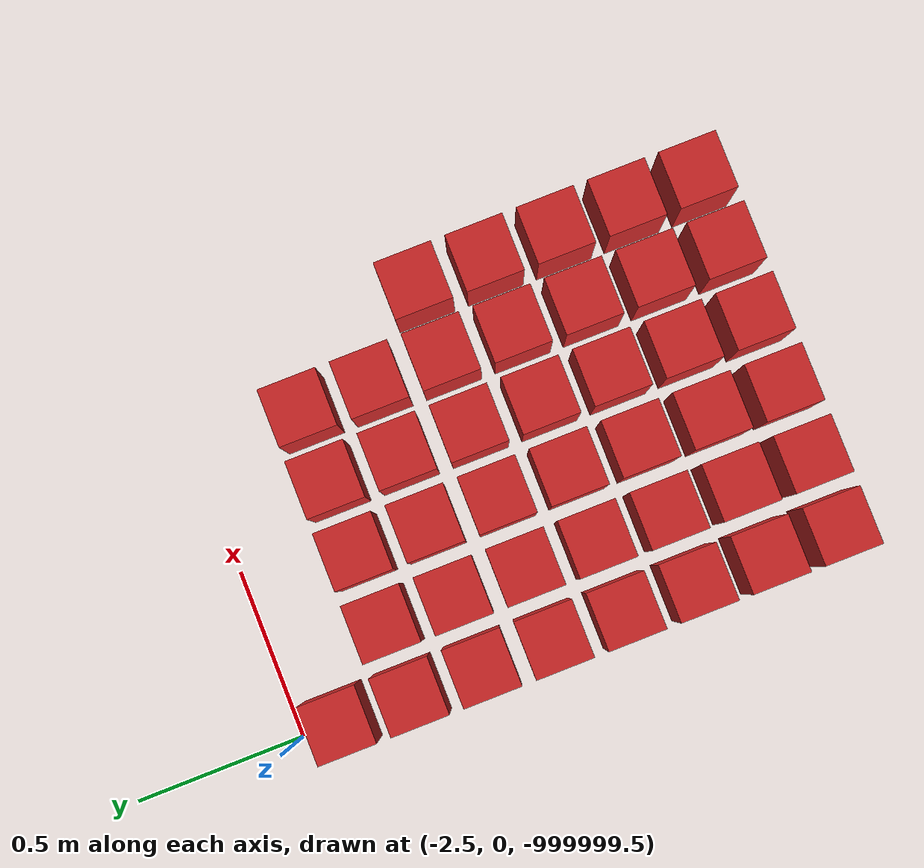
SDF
<sdf version="1.7">
 <world name="default">
  <model name="ground_plane">
   <static>1</static>
   <link name="link">
    <collision name="collision">
     <geometry><plane><normal>0 0 1</normal><size>100 100</size></plane></geometry>
     <surface>
      <contact><collide_bitmask>65535</collide_bitmask></contact>
      <friction><ode><mu>100</mu><mu2>50</mu2></ode></friction>
     </surface>
    </collision>
    <visual name="visual">
     <cast_shadows>0</cast_shadows>
     <geometry><plane><normal>0 0 1</normal><size>100 100</size></plane></geometry>
     <material>
      <script><uri>file://media/materials/scripts/gazebo.material</uri><name>Gazebo/Grey</name></script>
     </material>
    </visual>
   </link>
  </model>
  <model name="wall_92">
   <link name="link">
    <pose>0 0 0.5 0 -0 0</pose>
    <inertial>
     <mass>0.5167</mass>
     <inertia>
      <ixx>0.000861167</ixx>
      <ixy>0</ixy>
      <ixz>0</ixz>
      <iyy>0.000861167</iyy>
      <iyz>0</iyz>
      <izz>0.000861167</izz>
     </inertia>
    </inertial>
    <collision name="collision">
     <geometry><box><size>0.21 0.21 0.25</size></box></geometry>
     <surface>
      <contact>
       <poissons_ratio>0.347</poissons_ratio>
       <elastic_modulus>8.8e+09</elastic_modulus>
       <ode><kp>100000</kp><kd>100</kd><max_vel>100</max_vel><min_depth>0.001</min_depth></ode>
      </contact>
      <friction>
       <torsional>
        <coefficient>1</coefficient>
        <use_patch_radius>0</use_patch_radius>
        <surface_radius>0.01</surface_radius>
       </torsional>
      </friction>
     </surface>
    </collision>
    <visual name="visual">
     <geometry><box><size>0.175 0.175 0.25</size></box></geometry>
     <material>
      <script><uri>file://media/materials/scripts/gazebo.material</uri><name>Gazebo/Red</name></script>
     </material>
    </visual>
   </link>
   <pose>-2.5 -1.63043 -1e+06 0 -0 0</pose>
  </model>
  <model name="wall_93">
   <link name="link">
    <pose>0 0 0.5 0 -0 0</pose>
    <inertial>
     <mass>0.5167</mass>
     <inertia>
      <ixx>0.000861167</ixx>
      <ixy>0</ixy>
      <ixz>0</ixz>
      <iyy>0.000861167</iyy>
      <iyz>0</iyz>
      <izz>0.000861167</izz>
     </inertia>
    </inertial>
    <collision name="collision">
     <geometry><box><size>0.21 0.21 0.25</size></box></geometry>
     <surface>
      <contact>
       <poissons_ratio>0.347</poissons_ratio>
       <elastic_modulus>8.8e+09</elastic_modulus>
       <ode><kp>100000</kp><kd>100</kd><max_vel>100</max_vel><min_depth>0.001</min_depth></ode>
      </contact>
      <friction>
       <torsional>
        <coefficient>1</coefficient>
        <use_patch_radius>0</use_patch_radius>
        <surface_radius>0.01</surface_radius>
       </torsional>
      </friction>
     </surface>
    </collision>
    <visual name="visual">
     <geometry><box><size>0.175 0.175 0.25</size></box></geometry>
     <material>
      <script><uri>file://media/materials/scripts/gazebo.material</uri><name>Gazebo/Red</name></script>
     </material>
    </visual>
   </link>
   <pose>-2.28261 -1.63043 -1e+06 0 -0 0</pose>
  </model>
  <model name="wall_94">
   <link name="link">
    <pose>0 0 0.5 0 -0 0</pose>
    <inertial>
     <mass>0.5167</mass>
     <inertia>
      <ixx>0.000861167</ixx>
      <ixy>0</ixy>
      <ixz>0</ixz>
      <iyy>0.000861167</iyy>
      <iyz>0</iyz>
      <izz>0.000861167</izz>
     </inertia>
    </inertial>
    <collision name="collision">
     <geometry><box><size>0.21 0.21 0.25</size></box></geometry>
     <surface>
      <contact>
       <poissons_ratio>0.347</poissons_ratio>
       <elastic_modulus>8.8e+09</elastic_modulus>
       <ode><kp>100000</kp><kd>100</kd><max_vel>100</max_vel><min_depth>0.001</min_depth></ode>
      </contact>
      <friction>
       <torsional>
        <coefficient>1</coefficient>
        <use_patch_radius>0</use_patch_radius>
        <surface_radius>0.01</surface_radius>
       </torsional>
      </friction>
     </surface>
    </collision>
    <visual name="visual">
     <geometry><box><size>0.175 0.175 0.25</size></box></geometry>
     <material>
      <script><uri>file://media/materials/scripts/gazebo.material</uri><name>Gazebo/Red</name></script>
     </material>
    </visual>
   </link>
   <pose>-2.06522 -1.63043 -1e+06 0 -0 0</pose>
  </model>
  <model name="wall_95">
   <link name="link">
    <pose>0 0 0.5 0 -0 0</pose>
    <inertial>
     <mass>0.5167</mass>
     <inertia>
      <ixx>0.000861167</ixx>
      <ixy>0</ixy>
      <ixz>0</ixz>
      <iyy>0.000861167</iyy>
      <iyz>0</iyz>
      <izz>0.000861167</izz>
     </inertia>
    </inertial>
    <collision name="collision">
     <geometry><box><size>0.21 0.21 0.25</size></box></geometry>
     <surface>
      <contact>
       <poissons_ratio>0.347</poissons_ratio>
       <elastic_modulus>8.8e+09</elastic_modulus>
       <ode><kp>100000</kp><kd>100</kd><max_vel>100</max_vel><min_depth>0.001</min_depth></ode>
      </contact>
      <friction>
       <torsional>
        <coefficient>1</coefficient>
        <use_patch_radius>0</use_patch_radius>
        <surface_radius>0.01</surface_radius>
       </torsional>
      </friction>
     </surface>
    </collision>
    <visual name="visual">
     <geometry><box><size>0.175 0.175 0.25</size></box></geometry>
     <material>
      <script><uri>file://media/materials/scripts/gazebo.material</uri><name>Gazebo/Red</name></script>
     </material>
    </visual>
   </link>
   <pose>-1.84783 -1.63043 -1e+06 0 -0 0</pose>
  </model>
  <model name="wall_96">
   <link name="link">
    <pose>0 0 0.5 0 -0 0</pose>
    <inertial>
     <mass>0.5167</mass>
     <inertia>
      <ixx>0.000861167</ixx>
      <ixy>0</ixy>
      <ixz>0</ixz>
      <iyy>0.000861167</iyy>
      <iyz>0</iyz>
      <izz>0.000861167</izz>
     </inertia>
    </inertial>
    <collision name="collision">
     <geometry><box><size>0.21 0.21 0.25</size></box></geometry>
     <surface>
      <contact>
       <poissons_ratio>0.347</poissons_ratio>
       <elastic_modulus>8.8e+09</elastic_modulus>
       <ode><kp>100000</kp><kd>100</kd><max_vel>100</max_vel><min_depth>0.001</min_depth></ode>
      </contact>
      <friction>
       <torsional>
        <coefficient>1</coefficient>
        <use_patch_radius>0</use_patch_radius>
        <surface_radius>0.01</surface_radius>
       </torsional>
      </friction>
     </surface>
    </collision>
    <visual name="visual">
     <geometry><box><size>0.175 0.175 0.25</size></box></geometry>
     <material>
      <script><uri>file://media/materials/scripts/gazebo.material</uri><name>Gazebo/Red</name></script>
     </material>
    </visual>
   </link>
   <pose>-1.63043 -1.63043 -1e+06 0 -0 0</pose>
  </model>
  <model name="wall_97">
   <link name="link">
    <pose>0 0 0.5 0 -0 0</pose>
    <inertial>
     <mass>0.5167</mass>
     <inertia>
      <ixx>0.000861167</ixx>
      <ixy>0</ixy>
      <ixz>0</ixz>
      <iyy>0.000861167</iyy>
      <iyz>0</iyz>
      <izz>0.000861167</izz>
     </inertia>
    </inertial>
    <collision name="collision">
     <geometry><box><size>0.21 0.21 0.25</size></box></geometry>
     <surface>
      <contact>
       <poissons_ratio>0.347</poissons_ratio>
       <elastic_modulus>8.8e+09</elastic_modulus>
       <ode><kp>100000</kp><kd>100</kd><max_vel>100</max_vel><min_depth>0.001</min_depth></ode>
      </contact>
      <friction>
       <torsional>
        <coefficient>1</coefficient>
        <use_patch_radius>0</use_patch_radius>
        <surface_radius>0.01</surface_radius>
       </torsional>
      </friction>
     </surface>
    </collision>
    <visual name="visual">
     <geometry><box><size>0.175 0.175 0.25</size></box></geometry>
     <material>
      <script><uri>file://media/materials/scripts/gazebo.material</uri><name>Gazebo/Red</name></script>
     </material>
    </visual>
   </link>
   <pose>-1.41304 -1.63043 -1e+06 0 -0 0</pose>
  </model>
  <model name="wall_115">
   <link name="link">
    <pose>0 0 0.5 0 -0 0</pose>
    <inertial>
     <mass>0.5167</mass>
     <inertia>
      <ixx>0.000861167</ixx>
      <ixy>0</ixy>
      <ixz>0</ixz>
      <iyy>0.000861167</iyy>
      <iyz>0</iyz>
      <izz>0.000861167</izz>
     </inertia>
    </inertial>
    <collision name="collision">
     <geometry><box><size>0.21 0.21 0.25</size></box></geometry>
     <surface>
      <contact>
       <poissons_ratio>0.347</poissons_ratio>
       <elastic_modulus>8.8e+09</elastic_modulus>
       <ode><kp>100000</kp><kd>100</kd><max_vel>100</max_vel><min_depth>0.001</min_depth></ode>
      </contact>
      <friction>
       <torsional>
        <coefficient>1</coefficient>
        <use_patch_radius>0</use_patch_radius>
        <surface_radius>0.01</surface_radius>
       </torsional>
      </friction>
     </surface>
    </collision>
    <visual name="visual">
     <geometry><box><size>0.175 0.175 0.25</size></box></geometry>
     <material>
      <script><uri>file://media/materials/scripts/gazebo.material</uri><name>Gazebo/Red</name></script>
     </material>
    </visual>
   </link>
   <pose>-2.5 -1.41304 -1e+06 0 -0 0</pose>
  </model>
  <model name="wall_116">
   <link name="link">
    <pose>0 0 0.5 0 -0 0</pose>
    <inertial>
     <mass>0.5167</mass>
     <inertia>
      <ixx>0.000861167</ixx>
      <ixy>0</ixy>
      <ixz>0</ixz>
      <iyy>0.000861167</iyy>
      <iyz>0</iyz>
      <izz>0.000861167</izz>
     </inertia>
    </inertial>
    <collision name="collision">
     <geometry><box><size>0.21 0.21 0.25</size></box></geometry>
     <surface>
      <contact>
       <poissons_ratio>0.347</poissons_ratio>
       <elastic_modulus>8.8e+09</elastic_modulus>
       <ode><kp>100000</kp><kd>100</kd><max_vel>100</max_vel><min_depth>0.001</min_depth></ode>
      </contact>
      <friction>
       <torsional>
        <coefficient>1</coefficient>
        <use_patch_radius>0</use_patch_radius>
        <surface_radius>0.01</surface_radius>
       </torsional>
      </friction>
     </surface>
    </collision>
    <visual name="visual">
     <geometry><box><size>0.175 0.175 0.25</size></box></geometry>
     <material>
      <script><uri>file://media/materials/scripts/gazebo.material</uri><name>Gazebo/Red</name></script>
     </material>
    </visual>
   </link>
   <pose>-2.28261 -1.41304 -1e+06 0 -0 0</pose>
  </model>
  <model name="wall_117">
   <link name="link">
    <pose>0 0 0.5 0 -0 0</pose>
    <inertial>
     <mass>0.5167</mass>
     <inertia>
      <ixx>0.000861167</ixx>
      <ixy>0</ixy>
      <ixz>0</ixz>
      <iyy>0.000861167</iyy>
      <iyz>0</iyz>
      <izz>0.000861167</izz>
     </inertia>
    </inertial>
    <collision name="collision">
     <geometry><box><size>0.21 0.21 0.25</size></box></geometry>
     <surface>
      <contact>
       <poissons_ratio>0.347</poissons_ratio>
       <elastic_modulus>8.8e+09</elastic_modulus>
       <ode><kp>100000</kp><kd>100</kd><max_vel>100</max_vel><min_depth>0.001</min_depth></ode>
      </contact>
      <friction>
       <torsional>
        <coefficient>1</coefficient>
        <use_patch_radius>0</use_patch_radius>
        <surface_radius>0.01</surface_radius>
       </torsional>
      </friction>
     </surface>
    </collision>
    <visual name="visual">
     <geometry><box><size>0.175 0.175 0.25</size></box></geometry>
     <material>
      <script><uri>file://media/materials/scripts/gazebo.material</uri><name>Gazebo/Red</name></script>
     </material>
    </visual>
   </link>
   <pose>-2.06522 -1.41304 -1e+06 0 -0 0</pose>
  </model>
  <model name="wall_118">
   <link name="link">
    <pose>0 0 0.5 0 -0 0</pose>
    <inertial>
     <mass>0.5167</mass>
     <inertia>
      <ixx>0.000861167</ixx>
      <ixy>0</ixy>
      <ixz>0</ixz>
      <iyy>0.000861167</iyy>
      <iyz>0</iyz>
      <izz>0.000861167</izz>
     </inertia>
    </inertial>
    <collision name="collision">
     <geometry><box><size>0.21 0.21 0.25</size></box></geometry>
     <surface>
      <contact>
       <poissons_ratio>0.347</poissons_ratio>
       <elastic_modulus>8.8e+09</elastic_modulus>
       <ode><kp>100000</kp><kd>100</kd><max_vel>100</max_vel><min_depth>0.001</min_depth></ode>
      </contact>
      <friction>
       <torsional>
        <coefficient>1</coefficient>
        <use_patch_radius>0</use_patch_radius>
        <surface_radius>0.01</surface_radius>
       </torsional>
      </friction>
     </surface>
    </collision>
    <visual name="visual">
     <geometry><box><size>0.175 0.175 0.25</size></box></geometry>
     <material>
      <script><uri>file://media/materials/scripts/gazebo.material</uri><name>Gazebo/Red</name></script>
     </material>
    </visual>
   </link>
   <pose>-1.84783 -1.41304 -1e+06 0 -0 0</pose>
  </model>
  <model name="wall_119">
   <link name="link">
    <pose>0 0 0.5 0 -0 0</pose>
    <inertial>
     <mass>0.5167</mass>
     <inertia>
      <ixx>0.000861167</ixx>
      <ixy>0</ixy>
      <ixz>0</ixz>
      <iyy>0.000861167</iyy>
      <iyz>0</iyz>
      <izz>0.000861167</izz>
     </inertia>
    </inertial>
    <collision name="collision">
     <geometry><box><size>0.21 0.21 0.25</size></box></geometry>
     <surface>
      <contact>
       <poissons_ratio>0.347</poissons_ratio>
       <elastic_modulus>8.8e+09</elastic_modulus>
       <ode><kp>100000</kp><kd>100</kd><max_vel>100</max_vel><min_depth>0.001</min_depth></ode>
      </contact>
      <friction>
       <torsional>
        <coefficient>1</coefficient>
        <use_patch_radius>0</use_patch_radius>
        <surface_radius>0.01</surface_radius>
       </torsional>
      </friction>
     </surface>
    </collision>
    <visual name="visual">
     <geometry><box><size>0.175 0.175 0.25</size></box></geometry>
     <material>
      <script><uri>file://media/materials/scripts/gazebo.material</uri><name>Gazebo/Red</name></script>
     </material>
    </visual>
   </link>
   <pose>-1.63043 -1.41304 -1e+06 0 -0 0</pose>
  </model>
  <model name="wall_120">
   <link name="link">
    <pose>0 0 0.5 0 -0 0</pose>
    <inertial>
     <mass>0.5167</mass>
     <inertia>
      <ixx>0.000861167</ixx>
      <ixy>0</ixy>
      <ixz>0</ixz>
      <iyy>0.000861167</iyy>
      <iyz>0</iyz>
      <izz>0.000861167</izz>
     </inertia>
    </inertial>
    <collision name="collision">
     <geometry><box><size>0.21 0.21 0.25</size></box></geometry>
     <surface>
      <contact>
       <poissons_ratio>0.347</poissons_ratio>
       <elastic_modulus>8.8e+09</elastic_modulus>
       <ode><kp>100000</kp><kd>100</kd><max_vel>100</max_vel><min_depth>0.001</min_depth></ode>
      </contact>
      <friction>
       <torsional>
        <coefficient>1</coefficient>
        <use_patch_radius>0</use_patch_radius>
        <surface_radius>0.01</surface_radius>
       </torsional>
      </friction>
     </surface>
    </collision>
    <visual name="visual">
     <geometry><box><size>0.175 0.175 0.25</size></box></geometry>
     <material>
      <script><uri>file://media/materials/scripts/gazebo.material</uri><name>Gazebo/Red</name></script>
     </material>
    </visual>
   </link>
   <pose>-1.41304 -1.41304 -1e+06 0 -0 0</pose>
  </model>
  <model name="wall_138">
   <link name="link">
    <pose>0 0 0.5 0 -0 0</pose>
    <inertial>
     <mass>0.5167</mass>
     <inertia>
      <ixx>0.000861167</ixx>
      <ixy>0</ixy>
      <ixz>0</ixz>
      <iyy>0.000861167</iyy>
      <iyz>0</iyz>
      <izz>0.000861167</izz>
     </inertia>
    </inertial>
    <collision name="collision">
     <geometry><box><size>0.21 0.21 0.25</size></box></geometry>
     <surface>
      <contact>
       <poissons_ratio>0.347</poissons_ratio>
       <elastic_modulus>8.8e+09</elastic_modulus>
       <ode><kp>100000</kp><kd>100</kd><max_vel>100</max_vel><min_depth>0.001</min_depth></ode>
      </contact>
      <friction>
       <torsional>
        <coefficient>1</coefficient>
        <use_patch_radius>0</use_patch_radius>
        <surface_radius>0.01</surface_radius>
       </torsional>
      </friction>
     </surface>
    </collision>
    <visual name="visual">
     <geometry><box><size>0.175 0.175 0.25</size></box></geometry>
     <material>
      <script><uri>file://media/materials/scripts/gazebo.material</uri><name>Gazebo/Red</name></script>
     </material>
    </visual>
   </link>
   <pose>-2.5 -1.19565 -1e+06 0 -0 0</pose>
  </model>
  <model name="wall_139">
   <link name="link">
    <pose>0 0 0.5 0 -0 0</pose>
    <inertial>
     <mass>0.5167</mass>
     <inertia>
      <ixx>0.000861167</ixx>
      <ixy>0</ixy>
      <ixz>0</ixz>
      <iyy>0.000861167</iyy>
      <iyz>0</iyz>
      <izz>0.000861167</izz>
     </inertia>
    </inertial>
    <collision name="collision">
     <geometry><box><size>0.21 0.21 0.25</size></box></geometry>
     <surface>
      <contact>
       <poissons_ratio>0.347</poissons_ratio>
       <elastic_modulus>8.8e+09</elastic_modulus>
       <ode><kp>100000</kp><kd>100</kd><max_vel>100</max_vel><min_depth>0.001</min_depth></ode>
      </contact>
      <friction>
       <torsional>
        <coefficient>1</coefficient>
        <use_patch_radius>0</use_patch_radius>
        <surface_radius>0.01</surface_radius>
       </torsional>
      </friction>
     </surface>
    </collision>
    <visual name="visual">
     <geometry><box><size>0.175 0.175 0.25</size></box></geometry>
     <material>
      <script><uri>file://media/materials/scripts/gazebo.material</uri><name>Gazebo/Red</name></script>
     </material>
    </visual>
   </link>
   <pose>-2.28261 -1.19565 -1e+06 0 -0 0</pose>
  </model>
  <model name="wall_140">
   <link name="link">
    <pose>0 0 0.5 0 -0 0</pose>
    <inertial>
     <mass>0.5167</mass>
     <inertia>
      <ixx>0.000861167</ixx>
      <ixy>0</ixy>
      <ixz>0</ixz>
      <iyy>0.000861167</iyy>
      <iyz>0</iyz>
      <izz>0.000861167</izz>
     </inertia>
    </inertial>
    <collision name="collision">
     <geometry><box><size>0.21 0.21 0.25</size></box></geometry>
     <surface>
      <contact>
       <poissons_ratio>0.347</poissons_ratio>
       <elastic_modulus>8.8e+09</elastic_modulus>
       <ode><kp>100000</kp><kd>100</kd><max_vel>100</max_vel><min_depth>0.001</min_depth></ode>
      </contact>
      <friction>
       <torsional>
        <coefficient>1</coefficient>
        <use_patch_radius>0</use_patch_radius>
        <surface_radius>0.01</surface_radius>
       </torsional>
      </friction>
     </surface>
    </collision>
    <visual name="visual">
     <geometry><box><size>0.175 0.175 0.25</size></box></geometry>
     <material>
      <script><uri>file://media/materials/scripts/gazebo.material</uri><name>Gazebo/Red</name></script>
     </material>
    </visual>
   </link>
   <pose>-2.06522 -1.19565 -1e+06 0 -0 0</pose>
  </model>
  <model name="wall_141">
   <link name="link">
    <pose>0 0 0.5 0 -0 0</pose>
    <inertial>
     <mass>0.5167</mass>
     <inertia>
      <ixx>0.000861167</ixx>
      <ixy>0</ixy>
      <ixz>0</ixz>
      <iyy>0.000861167</iyy>
      <iyz>0</iyz>
      <izz>0.000861167</izz>
     </inertia>
    </inertial>
    <collision name="collision">
     <geometry><box><size>0.21 0.21 0.25</size></box></geometry>
     <surface>
      <contact>
       <poissons_ratio>0.347</poissons_ratio>
       <elastic_modulus>8.8e+09</elastic_modulus>
       <ode><kp>100000</kp><kd>100</kd><max_vel>100</max_vel><min_depth>0.001</min_depth></ode>
      </contact>
      <friction>
       <torsional>
        <coefficient>1</coefficient>
        <use_patch_radius>0</use_patch_radius>
        <surface_radius>0.01</surface_radius>
       </torsional>
      </friction>
     </surface>
    </collision>
    <visual name="visual">
     <geometry><box><size>0.175 0.175 0.25</size></box></geometry>
     <material>
      <script><uri>file://media/materials/scripts/gazebo.material</uri><name>Gazebo/Red</name></script>
     </material>
    </visual>
   </link>
   <pose>-1.84783 -1.19565 -1e+06 0 -0 0</pose>
  </model>
  <model name="wall_142">
   <link name="link">
    <pose>0 0 0.5 0 -0 0</pose>
    <inertial>
     <mass>0.5167</mass>
     <inertia>
      <ixx>0.000861167</ixx>
      <ixy>0</ixy>
      <ixz>0</ixz>
      <iyy>0.000861167</iyy>
      <iyz>0</iyz>
      <izz>0.000861167</izz>
     </inertia>
    </inertial>
    <collision name="collision">
     <geometry><box><size>0.21 0.21 0.25</size></box></geometry>
     <surface>
      <contact>
       <poissons_ratio>0.347</poissons_ratio>
       <elastic_modulus>8.8e+09</elastic_modulus>
       <ode><kp>100000</kp><kd>100</kd><max_vel>100</max_vel><min_depth>0.001</min_depth></ode>
      </contact>
      <friction>
       <torsional>
        <coefficient>1</coefficient>
        <use_patch_radius>0</use_patch_radius>
        <surface_radius>0.01</surface_radius>
       </torsional>
      </friction>
     </surface>
    </collision>
    <visual name="visual">
     <geometry><box><size>0.175 0.175 0.25</size></box></geometry>
     <material>
      <script><uri>file://media/materials/scripts/gazebo.material</uri><name>Gazebo/Red</name></script>
     </material>
    </visual>
   </link>
   <pose>-1.63043 -1.19565 -1e+06 0 -0 0</pose>
  </model>
  <model name="wall_143">
   <link name="link">
    <pose>0 0 0.5 0 -0 0</pose>
    <inertial>
     <mass>0.5167</mass>
     <inertia>
      <ixx>0.000861167</ixx>
      <ixy>0</ixy>
      <ixz>0</ixz>
      <iyy>0.000861167</iyy>
      <iyz>0</iyz>
      <izz>0.000861167</izz>
     </inertia>
    </inertial>
    <collision name="collision">
     <geometry><box><size>0.21 0.21 0.25</size></box></geometry>
     <surface>
      <contact>
       <poissons_ratio>0.347</poissons_ratio>
       <elastic_modulus>8.8e+09</elastic_modulus>
       <ode><kp>100000</kp><kd>100</kd><max_vel>100</max_vel><min_depth>0.001</min_depth></ode>
      </contact>
      <friction>
       <torsional>
        <coefficient>1</coefficient>
        <use_patch_radius>0</use_patch_radius>
        <surface_radius>0.01</surface_radius>
       </torsional>
      </friction>
     </surface>
    </collision>
    <visual name="visual">
     <geometry><box><size>0.175 0.175 0.25</size></box></geometry>
     <material>
      <script><uri>file://media/materials/scripts/gazebo.material</uri><name>Gazebo/Red</name></script>
     </material>
    </visual>
   </link>
   <pose>-1.41304 -1.19565 -1e+06 0 -0 0</pose>
  </model>
  <model name="wall_161">
   <link name="link">
    <pose>0 0 0.5 0 -0 0</pose>
    <inertial>
     <mass>0.5167</mass>
     <inertia>
      <ixx>0.000861167</ixx>
      <ixy>0</ixy>
      <ixz>0</ixz>
      <iyy>0.000861167</iyy>
      <iyz>0</iyz>
      <izz>0.000861167</izz>
     </inertia>
    </inertial>
    <collision name="collision">
     <geometry><box><size>0.21 0.21 0.25</size></box></geometry>
     <surface>
      <contact>
       <poissons_ratio>0.347</poissons_ratio>
       <elastic_modulus>8.8e+09</elastic_modulus>
       <ode><kp>100000</kp><kd>100</kd><max_vel>100</max_vel><min_depth>0.001</min_depth></ode>
      </contact>
      <friction>
       <torsional>
        <coefficient>1</coefficient>
        <use_patch_radius>0</use_patch_radius>
        <surface_radius>0.01</surface_radius>
       </torsional>
      </friction>
     </surface>
    </collision>
    <visual name="visual">
     <geometry><box><size>0.175 0.175 0.25</size></box></geometry>
     <material>
      <script><uri>file://media/materials/scripts/gazebo.material</uri><name>Gazebo/Red</name></script>
     </material>
    </visual>
   </link>
   <pose>-2.5 -0.978261 -1e+06 0 -0 0</pose>
  </model>
  <model name="wall_162">
   <link name="link">
    <pose>0 0 0.5 0 -0 0</pose>
    <inertial>
     <mass>0.5167</mass>
     <inertia>
      <ixx>0.000861167</ixx>
      <ixy>0</ixy>
      <ixz>0</ixz>
      <iyy>0.000861167</iyy>
      <iyz>0</iyz>
      <izz>0.000861167</izz>
     </inertia>
    </inertial>
    <collision name="collision">
     <geometry><box><size>0.21 0.21 0.25</size></box></geometry>
     <surface>
      <contact>
       <poissons_ratio>0.347</poissons_ratio>
       <elastic_modulus>8.8e+09</elastic_modulus>
       <ode><kp>100000</kp><kd>100</kd><max_vel>100</max_vel><min_depth>0.001</min_depth></ode>
      </contact>
      <friction>
       <torsional>
        <coefficient>1</coefficient>
        <use_patch_radius>0</use_patch_radius>
        <surface_radius>0.01</surface_radius>
       </torsional>
      </friction>
     </surface>
    </collision>
    <visual name="visual">
     <geometry><box><size>0.175 0.175 0.25</size></box></geometry>
     <material>
      <script><uri>file://media/materials/scripts/gazebo.material</uri><name>Gazebo/Red</name></script>
     </material>
    </visual>
   </link>
   <pose>-2.28261 -0.978261 -1e+06 0 -0 0</pose>
  </model>
  <model name="wall_163">
   <link name="link">
    <pose>0 0 0.5 0 -0 0</pose>
    <inertial>
     <mass>0.5167</mass>
     <inertia>
      <ixx>0.000861167</ixx>
      <ixy>0</ixy>
      <ixz>0</ixz>
      <iyy>0.000861167</iyy>
      <iyz>0</iyz>
      <izz>0.000861167</izz>
     </inertia>
    </inertial>
    <collision name="collision">
     <geometry><box><size>0.21 0.21 0.25</size></box></geometry>
     <surface>
      <contact>
       <poissons_ratio>0.347</poissons_ratio>
       <elastic_modulus>8.8e+09</elastic_modulus>
       <ode><kp>100000</kp><kd>100</kd><max_vel>100</max_vel><min_depth>0.001</min_depth></ode>
      </contact>
      <friction>
       <torsional>
        <coefficient>1</coefficient>
        <use_patch_radius>0</use_patch_radius>
        <surface_radius>0.01</surface_radius>
       </torsional>
      </friction>
     </surface>
    </collision>
    <visual name="visual">
     <geometry><box><size>0.175 0.175 0.25</size></box></geometry>
     <material>
      <script><uri>file://media/materials/scripts/gazebo.material</uri><name>Gazebo/Red</name></script>
     </material>
    </visual>
   </link>
   <pose>-2.06522 -0.978261 -1e+06 0 -0 0</pose>
  </model>
  <model name="wall_164">
   <link name="link">
    <pose>0 0 0.5 0 -0 0</pose>
    <inertial>
     <mass>0.5167</mass>
     <inertia>
      <ixx>0.000861167</ixx>
      <ixy>0</ixy>
      <ixz>0</ixz>
      <iyy>0.000861167</iyy>
      <iyz>0</iyz>
      <izz>0.000861167</izz>
     </inertia>
    </inertial>
    <collision name="collision">
     <geometry><box><size>0.21 0.21 0.25</size></box></geometry>
     <surface>
      <contact>
       <poissons_ratio>0.347</poissons_ratio>
       <elastic_modulus>8.8e+09</elastic_modulus>
       <ode><kp>100000</kp><kd>100</kd><max_vel>100</max_vel><min_depth>0.001</min_depth></ode>
      </contact>
      <friction>
       <torsional>
        <coefficient>1</coefficient>
        <use_patch_radius>0</use_patch_radius>
        <surface_radius>0.01</surface_radius>
       </torsional>
      </friction>
     </surface>
    </collision>
    <visual name="visual">
     <geometry><box><size>0.175 0.175 0.25</size></box></geometry>
     <material>
      <script><uri>file://media/materials/scripts/gazebo.material</uri><name>Gazebo/Red</name></script>
     </material>
    </visual>
   </link>
   <pose>-1.84783 -0.978261 -1e+06 0 -0 0</pose>
  </model>
  <model name="wall_165">
   <link name="link">
    <pose>0 0 0.5 0 -0 0</pose>
    <inertial>
     <mass>0.5167</mass>
     <inertia>
      <ixx>0.000861167</ixx>
      <ixy>0</ixy>
      <ixz>0</ixz>
      <iyy>0.000861167</iyy>
      <iyz>0</iyz>
      <izz>0.000861167</izz>
     </inertia>
    </inertial>
    <collision name="collision">
     <geometry><box><size>0.21 0.21 0.25</size></box></geometry>
     <surface>
      <contact>
       <poissons_ratio>0.347</poissons_ratio>
       <elastic_modulus>8.8e+09</elastic_modulus>
       <ode><kp>100000</kp><kd>100</kd><max_vel>100</max_vel><min_depth>0.001</min_depth></ode>
      </contact>
      <friction>
       <torsional>
        <coefficient>1</coefficient>
        <use_patch_radius>0</use_patch_radius>
        <surface_radius>0.01</surface_radius>
       </torsional>
      </friction>
     </surface>
    </collision>
    <visual name="visual">
     <geometry><box><size>0.175 0.175 0.25</size></box></geometry>
     <material>
      <script><uri>file://media/materials/scripts/gazebo.material</uri><name>Gazebo/Red</name></script>
     </material>
    </visual>
   </link>
   <pose>-1.63043 -0.978261 -1e+06 0 -0 0</pose>
  </model>
  <model name="wall_166">
   <link name="link">
    <pose>0 0 0.5 0 -0 0</pose>
    <inertial>
     <mass>0.5167</mass>
     <inertia>
      <ixx>0.000861167</ixx>
      <ixy>0</ixy>
      <ixz>0</ixz>
      <iyy>0.000861167</iyy>
      <iyz>0</iyz>
      <izz>0.000861167</izz>
     </inertia>
    </inertial>
    <collision name="collision">
     <geometry><box><size>0.21 0.21 0.25</size></box></geometry>
     <surface>
      <contact>
       <poissons_ratio>0.347</poissons_ratio>
       <elastic_modulus>8.8e+09</elastic_modulus>
       <ode><kp>100000</kp><kd>100</kd><max_vel>100</max_vel><min_depth>0.001</min_depth></ode>
      </contact>
      <friction>
       <torsional>
        <coefficient>1</coefficient>
        <use_patch_radius>0</use_patch_radius>
        <surface_radius>0.01</surface_radius>
       </torsional>
      </friction>
     </surface>
    </collision>
    <visual name="visual">
     <geometry><box><size>0.175 0.175 0.25</size></box></geometry>
     <material>
      <script><uri>file://media/materials/scripts/gazebo.material</uri><name>Gazebo/Red</name></script>
     </material>
    </visual>
   </link>
   <pose>-1.41304 -0.978261 -1e+06 0 -0 0</pose>
  </model>
  <model name="wall_184">
   <link name="link">
    <pose>0 0 0.5 0 -0 0</pose>
    <inertial>
     <mass>0.5167</mass>
     <inertia>
      <ixx>0.000861167</ixx>
      <ixy>0</ixy>
      <ixz>0</ixz>
      <iyy>0.000861167</iyy>
      <iyz>0</iyz>
      <izz>0.000861167</izz>
     </inertia>
    </inertial>
    <collision name="collision">
     <geometry><box><size>0.21 0.21 0.25</size></box></geometry>
     <surface>
      <contact>
       <poissons_ratio>0.347</poissons_ratio>
       <elastic_modulus>8.8e+09</elastic_modulus>
       <ode><kp>100000</kp><kd>100</kd><max_vel>100</max_vel><min_depth>0.001</min_depth></ode>
      </contact>
      <friction>
       <torsional>
        <coefficient>1</coefficient>
        <use_patch_radius>0</use_patch_radius>
        <surface_radius>0.01</surface_radius>
       </torsional>
      </friction>
     </surface>
    </collision>
    <visual name="visual">
     <geometry><box><size>0.175 0.175 0.25</size></box></geometry>
     <material>
      <script><uri>file://media/materials/scripts/gazebo.material</uri><name>Gazebo/Red</name></script>
     </material>
    </visual>
   </link>
   <pose>-2.5 -0.76087 -1e+06 0 -0 0</pose>
  </model>
  <model name="wall_185">
   <link name="link">
    <pose>0 0 0.5 0 -0 0</pose>
    <inertial>
     <mass>0.5167</mass>
     <inertia>
      <ixx>0.000861167</ixx>
      <ixy>0</ixy>
      <ixz>0</ixz>
      <iyy>0.000861167</iyy>
      <iyz>0</iyz>
      <izz>0.000861167</izz>
     </inertia>
    </inertial>
    <collision name="collision">
     <geometry><box><size>0.21 0.21 0.25</size></box></geometry>
     <surface>
      <contact>
       <poissons_ratio>0.347</poissons_ratio>
       <elastic_modulus>8.8e+09</elastic_modulus>
       <ode><kp>100000</kp><kd>100</kd><max_vel>100</max_vel><min_depth>0.001</min_depth></ode>
      </contact>
      <friction>
       <torsional>
        <coefficient>1</coefficient>
        <use_patch_radius>0</use_patch_radius>
        <surface_radius>0.01</surface_radius>
       </torsional>
      </friction>
     </surface>
    </collision>
    <visual name="visual">
     <geometry><box><size>0.175 0.175 0.25</size></box></geometry>
     <material>
      <script><uri>file://media/materials/scripts/gazebo.material</uri><name>Gazebo/Red</name></script>
     </material>
    </visual>
   </link>
   <pose>-2.28261 -0.76087 -1e+06 0 -0 0</pose>
  </model>
  <model name="wall_186">
   <link name="link">
    <pose>0 0 0.5 0 -0 0</pose>
    <inertial>
     <mass>0.5167</mass>
     <inertia>
      <ixx>0.000861167</ixx>
      <ixy>0</ixy>
      <ixz>0</ixz>
      <iyy>0.000861167</iyy>
      <iyz>0</iyz>
      <izz>0.000861167</izz>
     </inertia>
    </inertial>
    <collision name="collision">
     <geometry><box><size>0.21 0.21 0.25</size></box></geometry>
     <surface>
      <contact>
       <poissons_ratio>0.347</poissons_ratio>
       <elastic_modulus>8.8e+09</elastic_modulus>
       <ode><kp>100000</kp><kd>100</kd><max_vel>100</max_vel><min_depth>0.001</min_depth></ode>
      </contact>
      <friction>
       <torsional>
        <coefficient>1</coefficient>
        <use_patch_radius>0</use_patch_radius>
        <surface_radius>0.01</surface_radius>
       </torsional>
      </friction>
     </surface>
    </collision>
    <visual name="visual">
     <geometry><box><size>0.175 0.175 0.25</size></box></geometry>
     <material>
      <script><uri>file://media/materials/scripts/gazebo.material</uri><name>Gazebo/Red</name></script>
     </material>
    </visual>
   </link>
   <pose>-2.06522 -0.76087 -1e+06 0 -0 0</pose>
  </model>
  <model name="wall_187">
   <link name="link">
    <pose>0 0 0.5 0 -0 0</pose>
    <inertial>
     <mass>0.5167</mass>
     <inertia>
      <ixx>0.000861167</ixx>
      <ixy>0</ixy>
      <ixz>0</ixz>
      <iyy>0.000861167</iyy>
      <iyz>0</iyz>
      <izz>0.000861167</izz>
     </inertia>
    </inertial>
    <collision name="collision">
     <geometry><box><size>0.21 0.21 0.25</size></box></geometry>
     <surface>
      <contact>
       <poissons_ratio>0.347</poissons_ratio>
       <elastic_modulus>8.8e+09</elastic_modulus>
       <ode><kp>100000</kp><kd>100</kd><max_vel>100</max_vel><min_depth>0.001</min_depth></ode>
      </contact>
      <friction>
       <torsional>
        <coefficient>1</coefficient>
        <use_patch_radius>0</use_patch_radius>
        <surface_radius>0.01</surface_radius>
       </torsional>
      </friction>
     </surface>
    </collision>
    <visual name="visual">
     <geometry><box><size>0.175 0.175 0.25</size></box></geometry>
     <material>
      <script><uri>file://media/materials/scripts/gazebo.material</uri><name>Gazebo/Red</name></script>
     </material>
    </visual>
   </link>
   <pose>-1.84783 -0.76087 -1e+06 0 -0 0</pose>
  </model>
  <model name="wall_188">
   <link name="link">
    <pose>0 0 0.5 0 -0 0</pose>
    <inertial>
     <mass>0.5167</mass>
     <inertia>
      <ixx>0.000861167</ixx>
      <ixy>0</ixy>
      <ixz>0</ixz>
      <iyy>0.000861167</iyy>
      <iyz>0</iyz>
      <izz>0.000861167</izz>
     </inertia>
    </inertial>
    <collision name="collision">
     <geometry><box><size>0.21 0.21 0.25</size></box></geometry>
     <surface>
      <contact>
       <poissons_ratio>0.347</poissons_ratio>
       <elastic_modulus>8.8e+09</elastic_modulus>
       <ode><kp>100000</kp><kd>100</kd><max_vel>100</max_vel><min_depth>0.001</min_depth></ode>
      </contact>
      <friction>
       <torsional>
        <coefficient>1</coefficient>
        <use_patch_radius>0</use_patch_radius>
        <surface_radius>0.01</surface_radius>
       </torsional>
      </friction>
     </surface>
    </collision>
    <visual name="visual">
     <geometry><box><size>0.175 0.175 0.25</size></box></geometry>
     <material>
      <script><uri>file://media/materials/scripts/gazebo.material</uri><name>Gazebo/Red</name></script>
     </material>
    </visual>
   </link>
   <pose>-1.63043 -0.76087 -1e+06 0 -0 0</pose>
  </model>
  <model name="wall_189">
   <link name="link">
    <pose>0 0 0.5 0 -0 0</pose>
    <inertial>
     <mass>0.5167</mass>
     <inertia>
      <ixx>0.000861167</ixx>
      <ixy>0</ixy>
      <ixz>0</ixz>
      <iyy>0.000861167</iyy>
      <iyz>0</iyz>
      <izz>0.000861167</izz>
     </inertia>
    </inertial>
    <collision name="collision">
     <geometry><box><size>0.21 0.21 0.25</size></box></geometry>
     <surface>
      <contact>
       <poissons_ratio>0.347</poissons_ratio>
       <elastic_modulus>8.8e+09</elastic_modulus>
       <ode><kp>100000</kp><kd>100</kd><max_vel>100</max_vel><min_depth>0.001</min_depth></ode>
      </contact>
      <friction>
       <torsional>
        <coefficient>1</coefficient>
        <use_patch_radius>0</use_patch_radius>
        <surface_radius>0.01</surface_radius>
       </torsional>
      </friction>
     </surface>
    </collision>
    <visual name="visual">
     <geometry><box><size>0.175 0.175 0.25</size></box></geometry>
     <material>
      <script><uri>file://media/materials/scripts/gazebo.material</uri><name>Gazebo/Red</name></script>
     </material>
    </visual>
   </link>
   <pose>-1.41304 -0.76087 -1e+06 0 -0 0</pose>
  </model>
  <model name="wall_207">
   <link name="link">
    <pose>0 0 0.5 0 -0 0</pose>
    <inertial>
     <mass>0.5167</mass>
     <inertia>
      <ixx>0.000861167</ixx>
      <ixy>0</ixy>
      <ixz>0</ixz>
      <iyy>0.000861167</iyy>
      <iyz>0</iyz>
      <izz>0.000861167</izz>
     </inertia>
    </inertial>
    <collision name="collision">
     <geometry><box><size>0.21 0.21 0.25</size></box></geometry>
     <surface>
      <contact>
       <poissons_ratio>0.347</poissons_ratio>
       <elastic_modulus>8.8e+09</elastic_modulus>
       <ode><kp>100000</kp><kd>100</kd><max_vel>100</max_vel><min_depth>0.001</min_depth></ode>
      </contact>
      <friction>
       <torsional>
        <coefficient>1</coefficient>
        <use_patch_radius>0</use_patch_radius>
        <surface_radius>0.01</surface_radius>
       </torsional>
      </friction>
     </surface>
    </collision>
    <visual name="visual">
     <geometry><box><size>0.175 0.175 0.25</size></box></geometry>
     <material>
      <script><uri>file://media/materials/scripts/gazebo.material</uri><name>Gazebo/Red</name></script>
     </material>
    </visual>
   </link>
   <pose>-2.5 -0.543478 -1e+06 0 -0 0</pose>
  </model>
  <model name="wall_208">
   <link name="link">
    <pose>0 0 0.5 0 -0 0</pose>
    <inertial>
     <mass>0.5167</mass>
     <inertia>
      <ixx>0.000861167</ixx>
      <ixy>0</ixy>
      <ixz>0</ixz>
      <iyy>0.000861167</iyy>
      <iyz>0</iyz>
      <izz>0.000861167</izz>
     </inertia>
    </inertial>
    <collision name="collision">
     <geometry><box><size>0.21 0.21 0.25</size></box></geometry>
     <surface>
      <contact>
       <poissons_ratio>0.347</poissons_ratio>
       <elastic_modulus>8.8e+09</elastic_modulus>
       <ode><kp>100000</kp><kd>100</kd><max_vel>100</max_vel><min_depth>0.001</min_depth></ode>
      </contact>
      <friction>
       <torsional>
        <coefficient>1</coefficient>
        <use_patch_radius>0</use_patch_radius>
        <surface_radius>0.01</surface_radius>
       </torsional>
      </friction>
     </surface>
    </collision>
    <visual name="visual">
     <geometry><box><size>0.175 0.175 0.25</size></box></geometry>
     <material>
      <script><uri>file://media/materials/scripts/gazebo.material</uri><name>Gazebo/Red</name></script>
     </material>
    </visual>
   </link>
   <pose>-2.28261 -0.543478 -1e+06 0 -0 0</pose>
  </model>
  <model name="wall_209">
   <link name="link">
    <pose>0 0 0.5 0 -0 0</pose>
    <inertial>
     <mass>0.5167</mass>
     <inertia>
      <ixx>0.000861167</ixx>
      <ixy>0</ixy>
      <ixz>0</ixz>
      <iyy>0.000861167</iyy>
      <iyz>0</iyz>
      <izz>0.000861167</izz>
     </inertia>
    </inertial>
    <collision name="collision">
     <geometry><box><size>0.21 0.21 0.25</size></box></geometry>
     <surface>
      <contact>
       <poissons_ratio>0.347</poissons_ratio>
       <elastic_modulus>8.8e+09</elastic_modulus>
       <ode><kp>100000</kp><kd>100</kd><max_vel>100</max_vel><min_depth>0.001</min_depth></ode>
      </contact>
      <friction>
       <torsional>
        <coefficient>1</coefficient>
        <use_patch_radius>0</use_patch_radius>
        <surface_radius>0.01</surface_radius>
       </torsional>
      </friction>
     </surface>
    </collision>
    <visual name="visual">
     <geometry><box><size>0.175 0.175 0.25</size></box></geometry>
     <material>
      <script><uri>file://media/materials/scripts/gazebo.material</uri><name>Gazebo/Red</name></script>
     </material>
    </visual>
   </link>
   <pose>-2.06522 -0.543478 -1e+06 0 -0 0</pose>
  </model>
  <model name="wall_210">
   <link name="link">
    <pose>0 0 0.5 0 -0 0</pose>
    <inertial>
     <mass>0.5167</mass>
     <inertia>
      <ixx>0.000861167</ixx>
      <ixy>0</ixy>
      <ixz>0</ixz>
      <iyy>0.000861167</iyy>
      <iyz>0</iyz>
      <izz>0.000861167</izz>
     </inertia>
    </inertial>
    <collision name="collision">
     <geometry><box><size>0.21 0.21 0.25</size></box></geometry>
     <surface>
      <contact>
       <poissons_ratio>0.347</poissons_ratio>
       <elastic_modulus>8.8e+09</elastic_modulus>
       <ode><kp>100000</kp><kd>100</kd><max_vel>100</max_vel><min_depth>0.001</min_depth></ode>
      </contact>
      <friction>
       <torsional>
        <coefficient>1</coefficient>
        <use_patch_radius>0</use_patch_radius>
        <surface_radius>0.01</surface_radius>
       </torsional>
      </friction>
     </surface>
    </collision>
    <visual name="visual">
     <geometry><box><size>0.175 0.175 0.25</size></box></geometry>
     <material>
      <script><uri>file://media/materials/scripts/gazebo.material</uri><name>Gazebo/Red</name></script>
     </material>
    </visual>
   </link>
   <pose>-1.84783 -0.543478 -1e+06 0 -0 0</pose>
  </model>
  <model name="wall_211">
   <link name="link">
    <pose>0 0 0.5 0 -0 0</pose>
    <inertial>
     <mass>0.5167</mass>
     <inertia>
      <ixx>0.000861167</ixx>
      <ixy>0</ixy>
      <ixz>0</ixz>
      <iyy>0.000861167</iyy>
      <iyz>0</iyz>
      <izz>0.000861167</izz>
     </inertia>
    </inertial>
    <collision name="collision">
     <geometry><box><size>0.21 0.21 0.25</size></box></geometry>
     <surface>
      <contact>
       <poissons_ratio>0.347</poissons_ratio>
       <elastic_modulus>8.8e+09</elastic_modulus>
       <ode><kp>100000</kp><kd>100</kd><max_vel>100</max_vel><min_depth>0.001</min_depth></ode>
      </contact>
      <friction>
       <torsional>
        <coefficient>1</coefficient>
        <use_patch_radius>0</use_patch_radius>
        <surface_radius>0.01</surface_radius>
       </torsional>
      </friction>
     </surface>
    </collision>
    <visual name="visual">
     <geometry><box><size>0.175 0.175 0.25</size></box></geometry>
     <material>
      <script><uri>file://media/materials/scripts/gazebo.material</uri><name>Gazebo/Red</name></script>
     </material>
    </visual>
   </link>
   <pose>-1.63043 -0.543478 -1e+06 0 -0 0</pose>
  </model>
  <model name="wall_230">
   <link name="link">
    <pose>0 0 0.5 0 -0 0</pose>
    <inertial>
     <mass>0.5167</mass>
     <inertia>
      <ixx>0.000861167</ixx>
      <ixy>0</ixy>
      <ixz>0</ixz>
      <iyy>0.000861167</iyy>
      <iyz>0</iyz>
      <izz>0.000861167</izz>
     </inertia>
    </inertial>
    <collision name="collision">
     <geometry><box><size>0.21 0.21 0.25</size></box></geometry>
     <surface>
      <contact>
       <poissons_ratio>0.347</poissons_ratio>
       <elastic_modulus>8.8e+09</elastic_modulus>
       <ode><kp>100000</kp><kd>100</kd><max_vel>100</max_vel><min_depth>0.001</min_depth></ode>
      </contact>
      <friction>
       <torsional>
        <coefficient>1</coefficient>
        <use_patch_radius>0</use_patch_radius>
        <surface_radius>0.01</surface_radius>
       </torsional>
      </friction>
     </surface>
    </collision>
    <visual name="visual">
     <geometry><box><size>0.175 0.175 0.25</size></box></geometry>
     <material>
      <script><uri>file://media/materials/scripts/gazebo.material</uri><name>Gazebo/Red</name></script>
     </material>
    </visual>
   </link>
   <pose>-2.5 -0.326087 -1e+06 0 -0 0</pose>
  </model>
  <model name="wall_231">
   <link name="link">
    <pose>0 0 0.5 0 -0 0</pose>
    <inertial>
     <mass>0.5167</mass>
     <inertia>
      <ixx>0.000861167</ixx>
      <ixy>0</ixy>
      <ixz>0</ixz>
      <iyy>0.000861167</iyy>
      <iyz>0</iyz>
      <izz>0.000861167</izz>
     </inertia>
    </inertial>
    <collision name="collision">
     <geometry><box><size>0.21 0.21 0.25</size></box></geometry>
     <surface>
      <contact>
       <poissons_ratio>0.347</poissons_ratio>
       <elastic_modulus>8.8e+09</elastic_modulus>
       <ode><kp>100000</kp><kd>100</kd><max_vel>100</max_vel><min_depth>0.001</min_depth></ode>
      </contact>
      <friction>
       <torsional>
        <coefficient>1</coefficient>
        <use_patch_radius>0</use_patch_radius>
        <surface_radius>0.01</surface_radius>
       </torsional>
      </friction>
     </surface>
    </collision>
    <visual name="visual">
     <geometry><box><size>0.175 0.175 0.25</size></box></geometry>
     <material>
      <script><uri>file://media/materials/scripts/gazebo.material</uri><name>Gazebo/Red</name></script>
     </material>
    </visual>
   </link>
   <pose>-2.28261 -0.326087 -1e+06 0 -0 0</pose>
  </model>
  <model name="wall_232">
   <link name="link">
    <pose>0 0 0.5 0 -0 0</pose>
    <inertial>
     <mass>0.5167</mass>
     <inertia>
      <ixx>0.000861167</ixx>
      <ixy>0</ixy>
      <ixz>0</ixz>
      <iyy>0.000861167</iyy>
      <iyz>0</iyz>
      <izz>0.000861167</izz>
     </inertia>
    </inertial>
    <collision name="collision">
     <geometry><box><size>0.21 0.21 0.25</size></box></geometry>
     <surface>
      <contact>
       <poissons_ratio>0.347</poissons_ratio>
       <elastic_modulus>8.8e+09</elastic_modulus>
       <ode><kp>100000</kp><kd>100</kd><max_vel>100</max_vel><min_depth>0.001</min_depth></ode>
      </contact>
      <friction>
       <torsional>
        <coefficient>1</coefficient>
        <use_patch_radius>0</use_patch_radius>
        <surface_radius>0.01</surface_radius>
       </torsional>
      </friction>
     </surface>
    </collision>
    <visual name="visual">
     <geometry><box><size>0.175 0.175 0.25</size></box></geometry>
     <material>
      <script><uri>file://media/materials/scripts/gazebo.material</uri><name>Gazebo/Red</name></script>
     </material>
    </visual>
   </link>
   <pose>-2.06522 -0.326087 -1e+06 0 -0 0</pose>
  </model>
  <model name="wall_233">
   <link name="link">
    <pose>0 0 0.5 0 -0 0</pose>
    <inertial>
     <mass>0.5167</mass>
     <inertia>
      <ixx>0.000861167</ixx>
      <ixy>0</ixy>
      <ixz>0</ixz>
      <iyy>0.000861167</iyy>
      <iyz>0</iyz>
      <izz>0.000861167</izz>
     </inertia>
    </inertial>
    <collision name="collision">
     <geometry><box><size>0.21 0.21 0.25</size></box></geometry>
     <surface>
      <contact>
       <poissons_ratio>0.347</poissons_ratio>
       <elastic_modulus>8.8e+09</elastic_modulus>
       <ode><kp>100000</kp><kd>100</kd><max_vel>100</max_vel><min_depth>0.001</min_depth></ode>
      </contact>
      <friction>
       <torsional>
        <coefficient>1</coefficient>
        <use_patch_radius>0</use_patch_radius>
        <surface_radius>0.01</surface_radius>
       </torsional>
      </friction>
     </surface>
    </collision>
    <visual name="visual">
     <geometry><box><size>0.175 0.175 0.25</size></box></geometry>
     <material>
      <script><uri>file://media/materials/scripts/gazebo.material</uri><name>Gazebo/Red</name></script>
     </material>
    </visual>
   </link>
   <pose>-1.84783 -0.326087 -1e+06 0 -0 0</pose>
  </model>
  <model name="wall_234">
   <link name="link">
    <pose>0 0 0.5 0 -0 0</pose>
    <inertial>
     <mass>0.5167</mass>
     <inertia>
      <ixx>0.000861167</ixx>
      <ixy>0</ixy>
      <ixz>0</ixz>
      <iyy>0.000861167</iyy>
      <iyz>0</iyz>
      <izz>0.000861167</izz>
     </inertia>
    </inertial>
    <collision name="collision">
     <geometry><box><size>0.21 0.21 0.25</size></box></geometry>
     <surface>
      <contact>
       <poissons_ratio>0.347</poissons_ratio>
       <elastic_modulus>8.8e+09</elastic_modulus>
       <ode><kp>100000</kp><kd>100</kd><max_vel>100</max_vel><min_depth>0.001</min_depth></ode>
      </contact>
      <friction>
       <torsional>
        <coefficient>1</coefficient>
        <use_patch_radius>0</use_patch_radius>
        <surface_radius>0.01</surface_radius>
       </torsional>
      </friction>
     </surface>
    </collision>
    <visual name="visual">
     <geometry><box><size>0.175 0.175 0.25</size></box></geometry>
     <material>
      <script><uri>file://media/materials/scripts/gazebo.material</uri><name>Gazebo/Red</name></script>
     </material>
    </visual>
   </link>
   <pose>-1.63043 -0.326087 -1e+06 0 -0 0</pose>
  </model>
  <model name="wall_253">
   <link name="link">
    <pose>0 0 0.5 0 -0 0</pose>
    <inertial>
     <mass>0.5167</mass>
     <inertia>
      <ixx>0.000861167</ixx>
      <ixy>0</ixy>
      <ixz>0</ixz>
      <iyy>0.000861167</iyy>
      <iyz>0</iyz>
      <izz>0.000861167</izz>
     </inertia>
    </inertial>
    <collision name="collision">
     <geometry><box><size>0.21 0.21 0.25</size></box></geometry>
     <surface>
      <contact>
       <poissons_ratio>0.347</poissons_ratio>
       <elastic_modulus>8.8e+09</elastic_modulus>
       <ode><kp>100000</kp><kd>100</kd><max_vel>100</max_vel><min_depth>0.001</min_depth></ode>
      </contact>
      <friction>
       <torsional>
        <coefficient>1</coefficient>
        <use_patch_radius>0</use_patch_radius>
        <surface_radius>0.01</surface_radius>
       </torsional>
      </friction>
     </surface>
    </collision>
    <visual name="visual">
     <geometry><box><size>0.175 0.175 0.25</size></box></geometry>
     <material>
      <script><uri>file://media/materials/scripts/gazebo.material</uri><name>Gazebo/Red</name></script>
     </material>
    </visual>
   </link>
   <pose>-2.5 -0.108696 -1e+06 0 -0 0</pose>
  </model>
 </world>
</sdf>
